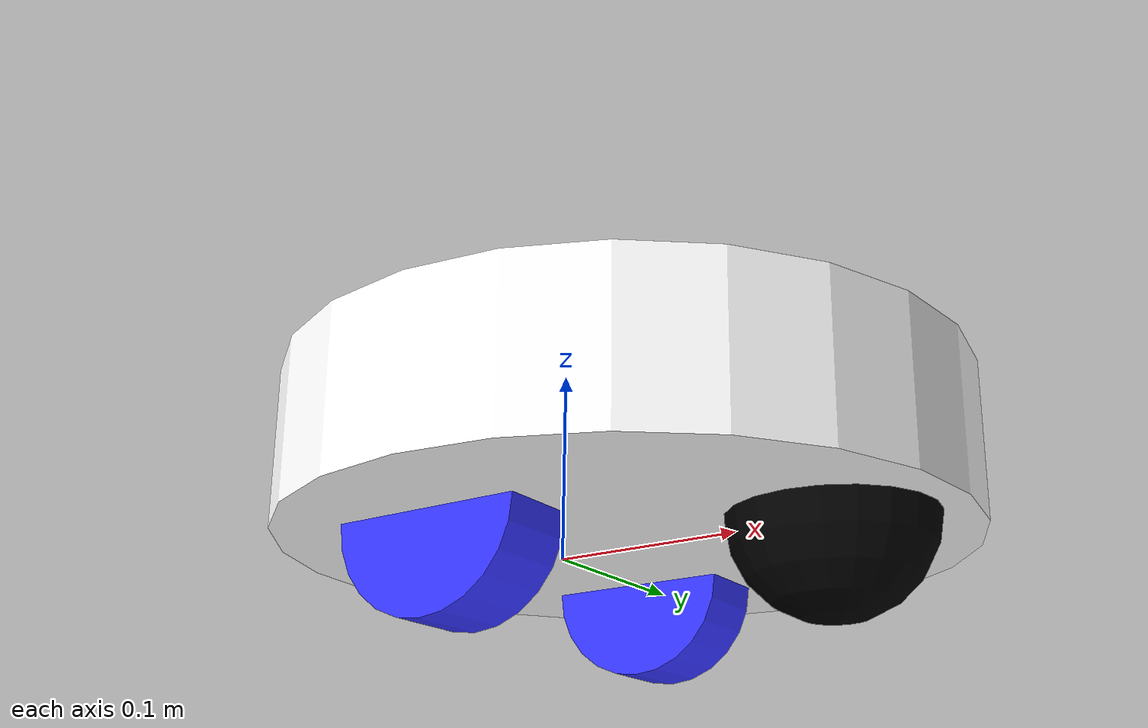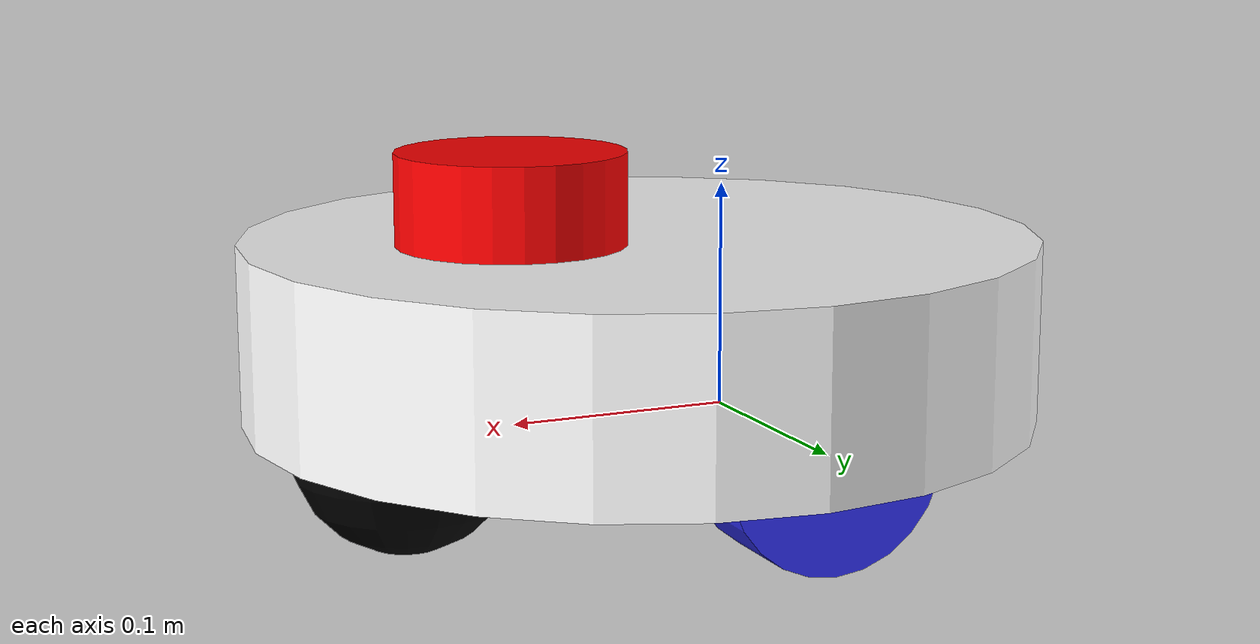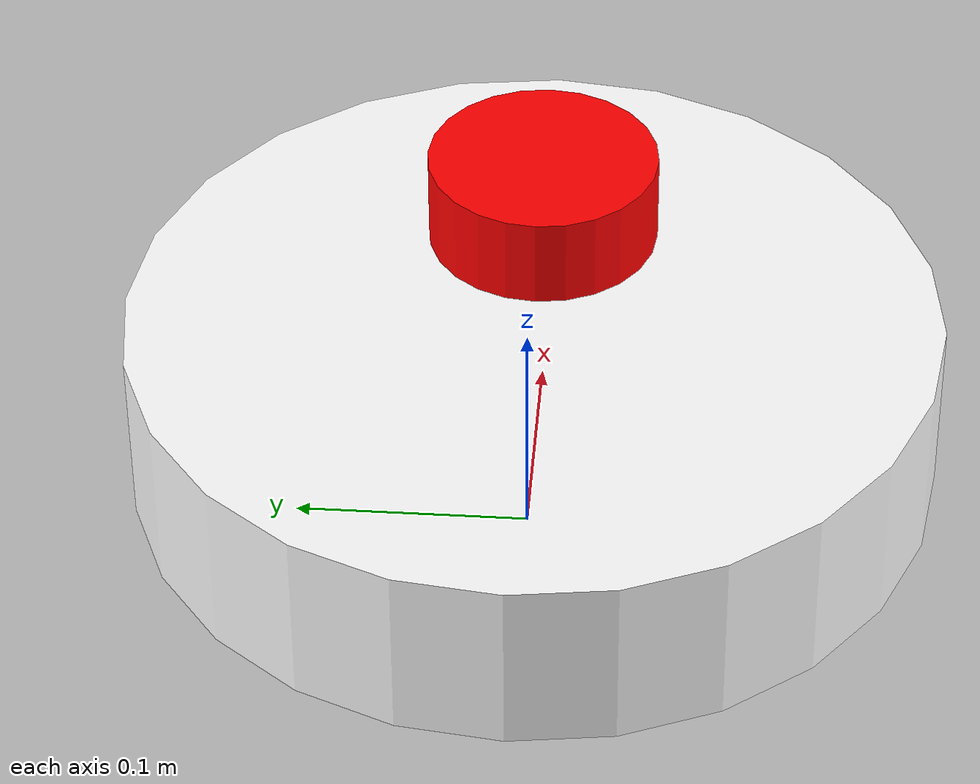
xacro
<?xml version="1.0"?>
<robot xmlns:xacro="http://www.ros.org/wiki/xacro"  name="robot">

    <xacro:include filename="robot_core.xacro" />
    <xacro:include filename="ros2_control.xacro" />
    <xacro:include filename="lidar.xacro" />
</robot>

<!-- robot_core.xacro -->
<robot xmlns:xacro="http://www.ros.org/wiki/xacro">
    <xacro:include filename="inertial_macros.xacro" />
    <material name="white">
        <color rgba="1 1 1 1"/>
    </material>

    <material name="orange">
        <color rgba="1 0.3 0.1 1"/>
    </material>

    <material name="blue">
        <color rgba="0.2 0.2 1 1"/>
    </material>

    <material name="black">
        <color rgba="0 0 0 1"/>
    </material>
    <material name="red">
        <color rgba="1 0 0 1"/>
    </material>

    <!-- BASE_FOOTPRINT LINK -->

    <joint name="base_footprint_joint" type="fixed">
        <parent link="base_link"/>
        <child link="base_footprint"/>
        <origin xyz="0 0 0" rpy="0 0 0"/>
    </joint>

    <link name="base_footprint">
    </link>

    <link name="base_link">
    </link>

    <joint name="chassis_joint" type="fixed">
        <parent link="base_link"/>
        <child link="chassis"/>
        <origin xyz="0 0 0"/>
    </joint>

    <xacro:property name="chassisOrigin" value="0.04 0 0.04" />
    <xacro:property name="chassisLength" value="0.08" />
    <xacro:property name="chassisRadius" value="0.175" />
    <xacro:property name="chassisMaterial" value="white" />
    <link name="chassis">
        <visual>
            <origin xyz="${chassisOrigin}" rpy="0 0 0"/>
            <geometry>
                <cylinder length="${chassisLength}" radius="${chassisRadius}"/>
            </geometry>
            <material name="${chassisMaterial}"/>
        </visual>
        <collision>
            <origin xyz="${chassisOrigin}" rpy="0 0 0"/>
            <geometry>
                <cylinder length="${chassisLength}" radius="${chassisRadius}"/>
            </geometry>
            <material name="${chassisMaterial}"/>
        </collision>
        <xacro:inertial_cylinder mass="0.3" length="${chassisLength}" radius="${chassisRadius}">
            <origin xyz="${chassisOrigin}" rpy="0 0 0"/>
        </xacro:inertial_cylinder>
    </link>
    <gazebo reference="chassis">
        <material>Gazebo/White</material>
    </gazebo>
    <!-- LEFT WHEEL -->

    <joint name="left_wheel_joint" type="continuous">
        <parent link="base_link"/>
        <child link="left_wheel"/>
        <origin xyz="0 0.09 0" rpy="-${pi/2} 0 0"/>
        <axis xyz="0 0 1"/>
    </joint>

    <xacro:property name="leftWheelLength" value="0.04" />
    <xacro:property name="leftWheelRadius" value="0.05" />
    <xacro:property name="leftWheelMaterial" value="blue" />
    <link name="left_wheel">
        <visual>
            <geometry>
                <cylinder length="${leftWheelLength}" radius="${leftWheelRadius}" />/>
            </geometry>
            <material name="${leftWheelMaterial}"/>
        </visual>
        <collision>
            <geometry>
                <cylinder length="${leftWheelLength}" radius="${leftWheelRadius}" />/>
            </geometry>
            <material name="${leftWheelMaterial}"/>
        </collision>
        <xacro:inertial_cylinder mass="0.1" length="0.04" radius="0.05">
            <origin xyz="0 0 0" rpy="0 0 0"/>
        </xacro:inertial_cylinder>
    </link>
    <gazebo reference="left_wheel">
        <material>Gazebo/Blue</material>
    </gazebo>
    <!-- RIGHT WHEEL -->

    <joint name="right_wheel_joint" type="continuous">
        <parent link="base_link"/>
        <child link="right_wheel"/>
        <origin xyz="0 -0.09 0" rpy="${pi/2} 0 0"/>
        <axis xyz="0 0 -1"/>
    </joint>

    <xacro:property name="rightWheelLength" value="0.04" />
    <xacro:property name="rightWheelRadius" value="0.05" />
    <xacro:property name="rightWheelMaterial" value="blue" />
    <link name="right_wheel">
        <visual>
            <geometry>
                <cylinder length="${rightWheelLength}" radius="${rightWheelRadius}" />/>
            </geometry>
            <material name="${rightWheelMaterial}"/>
        </visual>
        <collision>
            <geometry>
                <cylinder length="${rightWheelLength}" radius="${rightWheelRadius}" />/>
            </geometry>
            <material name="${rightWheelMaterial}"/>
        </collision>
        <xacro:inertial_cylinder mass="0.1" length="0.04" radius="0.05">
            <origin xyz="0 0 0" rpy="0 0 0"/>
        </xacro:inertial_cylinder>
    </link>
    <gazebo reference="right_wheel">
        <material>Gazebo/Blue</material>
    </gazebo>

    <!-- CASTER WHEEL -->

    <joint name="caster_wheel_joint" type="fixed">
        <parent link="chassis"/>
        <child link="caster_wheel"/>
        <origin xyz="0.15 0 0" rpy="0 0 0"/>
    </joint>

    <xacro:property name="casterWheelRadius" value="0.05" />
    <xacro:property name="casterWheelMaterial" value="black" />
    <link name="caster_wheel">
        <visual>
            <geometry>
                <sphere radius="${casterWheelRadius}" />
            </geometry>
            <material name="${casterWheelMaterial}"/>
        </visual>
        <collision>
            <geometry>
                <sphere radius="${casterWheelRadius}" />
            </geometry>
            <material name="${casterWheelMaterial}"/>
        </collision>
        <xacro:inertial_sphere mass="0.1" radius="0.05">
            <origin xyz="0 0 0" rpy="0 0 0"/>
        </xacro:inertial_sphere>
    </link>
    <gazebo reference="caster_wheel">
        <material>Gazebo/Black</material>
        <mu1 value="0.001"/>
        <mu2 value="0.001"/>
    </gazebo>

</robot>

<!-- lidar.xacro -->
<robot xmlns:xacro="http://www.ros.org/wiki/xacro" >

    <joint name="laser_joint" type="fixed">
        <parent link="chassis"/>
        <child link="laser_frame"/>
        <origin xyz="0.1 0 0.1" rpy="0 0 0"/>
    </joint>

    <link name="laser_frame">
        <visual>
            <geometry>
                <cylinder radius="0.05" length="0.04"/>
            </geometry>
            <material name="red"/>
        </visual>
        <collision>
            <geometry>
                <cylinder radius="0.05" length="0.04"/>
            </geometry>
        </collision>
        <xacro:inertial_cylinder mass="0.1" length="0.04" radius="0.05">
            <origin xyz="0 0 0" rpy="0 0 0"/>
        </xacro:inertial_cylinder>
    </link>

    <gazebo reference="laser_frame">
        <material>Gazebo/Red</material>

        <sensor name="laser" type="ray">
            <pose> 0 0 0 0 0 0 </pose>
            <visualize>true</visualize>
            <update_rate>10</update_rate>
            <ray>
                <scan>
                    <horizontal>
                        <samples>360</samples>
                        <min_angle>-3.14</min_angle>
                        <max_angle>3.14</max_angle>
                    </horizontal>
                </scan>
                <range>
                    <min>0.1</min>
                    <max>12</max>
                </range>
            </ray>
            <plugin name="laser_controller" filename="libgazebo_ros_ray_sensor.so">
                <ros>
                    <argument>--ros-args --remap ~/out:=scan</argument>
                </ros>
                <output_type>sensor_msgs/LaserScan</output_type>
                <frame_name>laser_frame</frame_name>
            </plugin>
        </sensor>
    </gazebo>

</robot>
